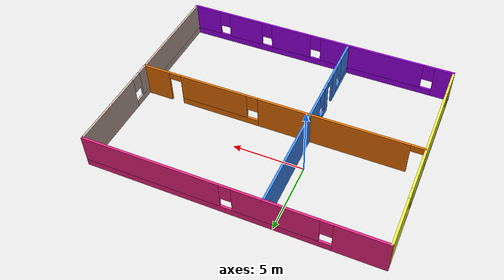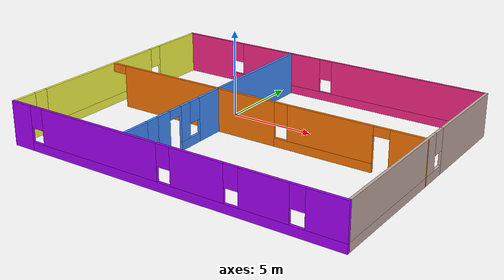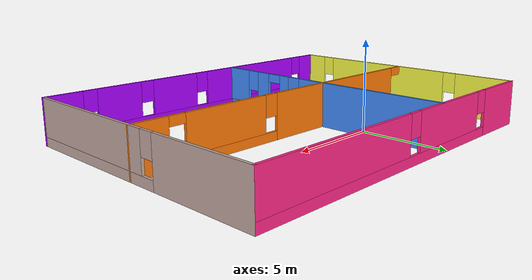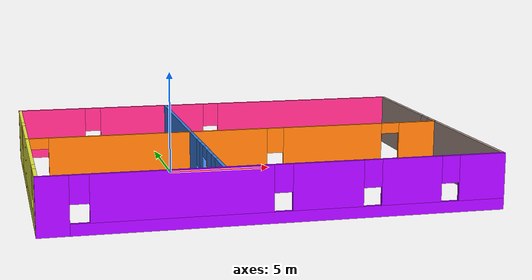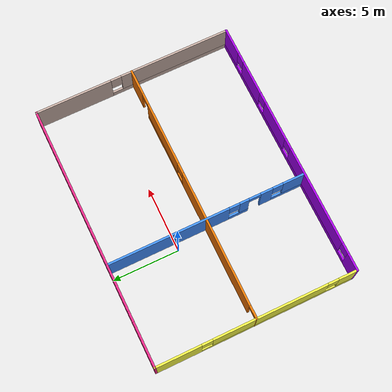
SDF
<?xml version='1.0'?>
<sdf version='1.6'>
  <model name='my_small_office'>
    <pose frame=''>2.925 -2.5 0 0 -0 0</pose>
    <link name='Wall_1'>
      <pose frame=''>0 -7.5 0 0 -0 0</pose>
      <visual name='Wall_1_Visual_0'>
        <pose frame=''>-9.32312 0 1.25 0 -0 0</pose>
        <geometry>
          <box>
            <size>1.35377 0.15 2.5</size>
          </box>
        </geometry>
        <material>
          <script>
            <uri>file://media/materials/scripts/gazebo.material</uri>
            <name>Gazebo/Grey</name>
          </script>
          <ambient>0.666667 0 1 1</ambient>
        </material>
        <meta>
          <layer>0</layer>
        </meta>
      </visual>
      <collision name='Wall_1_Collision_0'>
        <geometry>
          <box>
            <size>1.35377 0.15 2.5</size>
          </box>
        </geometry>
        <pose frame=''>-9.32312 0 1.25 0 -0 0</pose>
      </collision>
      <visual name='Wall_1_Visual_1'>
        <pose frame=''>0.676883 0 0.25 0 -0 0</pose>
        <geometry>
          <box>
            <size>18.6462 0.15 0.5</size>
          </box>
        </geometry>
        <material>
          <script>
            <uri>file://media/materials/scripts/gazebo.material</uri>
            <name>Gazebo/Grey</name>
          </script>
          <ambient>0.666667 0 1 1</ambient>
        </material>
        <meta>
          <layer>0</layer>
        </meta>
      </visual>
      <collision name='Wall_1_Collision_1'>
        <geometry>
          <box>
            <size>18.6462 0.15 0.5</size>
          </box>
        </geometry>
        <pose frame=''>0.676883 0 0.25 0 -0 0</pose>
      </collision>
      <visual name='Wall_1_Visual_2'>
        <pose frame=''>-4.05234 0 1.5 0 -0 0</pose>
        <geometry>
          <box>
            <size>7.58779 0.15 2</size>
          </box>
        </geometry>
        <material>
          <script>
            <uri>file://media/materials/scripts/gazebo.material</uri>
            <name>Gazebo/Grey</name>
          </script>
          <ambient>0.666667 0 1 1</ambient>
        </material>
        <meta>
          <layer>0</layer>
        </meta>
      </visual>
      <collision name='Wall_1_Collision_2'>
        <geometry>
          <box>
            <size>7.58779 0.15 2</size>
          </box>
        </geometry>
        <pose frame=''>-4.05234 0 1.5 0 -0 0</pose>
      </collision>
      <visual name='Wall_1_Visual_3'>
        <pose frame=''>2.08342 0 1.5 0 -0 0</pose>
        <geometry>
          <box>
            <size>3.08373 0.15 2</size>
          </box>
        </geometry>
        <material>
          <script>
            <uri>file://media/materials/scripts/gazebo.material</uri>
            <name>Gazebo/Grey</name>
          </script>
          <ambient>0.666667 0 1 1</ambient>
        </material>
        <meta>
          <layer>0</layer>
        </meta>
      </visual>
      <collision name='Wall_1_Collision_3'>
        <geometry>
          <box>
            <size>3.08373 0.15 2</size>
          </box>
        </geometry>
        <pose frame=''>2.08342 0 1.5 0 -0 0</pose>
      </collision>
      <visual name='Wall_1_Visual_4'>
        <pose frame=''>5.76488 0 1.5 0 -0 0</pose>
        <geometry>
          <box>
            <size>2.67918 0.15 2</size>
          </box>
        </geometry>
        <material>
          <script>
            <uri>file://media/materials/scripts/gazebo.material</uri>
            <name>Gazebo/Grey</name>
          </script>
          <ambient>0.666667 0 1 1</ambient>
        </material>
        <meta>
          <layer>0</layer>
        </meta>
      </visual>
      <collision name='Wall_1_Collision_4'>
        <geometry>
          <box>
            <size>2.67918 0.15 2</size>
          </box>
        </geometry>
        <pose frame=''>5.76488 0 1.5 0 -0 0</pose>
      </collision>
      <visual name='Wall_1_Visual_5'>
        <pose frame=''>8.95224 0 1.5 0 -0 0</pose>
        <geometry>
          <box>
            <size>2.09553 0.15 2</size>
          </box>
        </geometry>
        <material>
          <script>
            <uri>file://media/materials/scripts/gazebo.material</uri>
            <name>Gazebo/Grey</name>
          </script>
          <ambient>0.666667 0 1 1</ambient>
        </material>
        <meta>
          <layer>0</layer>
        </meta>
      </visual>
      <collision name='Wall_1_Collision_5'>
        <geometry>
          <box>
            <size>2.09553 0.15 2</size>
          </box>
        </geometry>
        <pose frame=''>8.95224 0 1.5 0 -0 0</pose>
      </collision>
      <visual name='Wall_1_Visual_6'>
        <pose frame=''>-8.24623 0 1.9 0 -0 0</pose>
        <geometry>
          <box>
            <size>0.8 0.15 1.2</size>
          </box>
        </geometry>
        <material>
          <script>
            <uri>file://media/materials/scripts/gazebo.material</uri>
            <name>Gazebo/Grey</name>
          </script>
          <ambient>0.666667 0 1 1</ambient>
        </material>
        <meta>
          <layer>0</layer>
        </meta>
      </visual>
      <collision name='Wall_1_Collision_6'>
        <geometry>
          <box>
            <size>0.8 0.15 1.2</size>
          </box>
        </geometry>
        <pose frame=''>-8.24623 0 1.9 0 -0 0</pose>
      </collision>
      <visual name='Wall_1_Visual_7'>
        <pose frame=''>0.141556 0 1.9 0 -0 0</pose>
        <geometry>
          <box>
            <size>0.8 0.15 1.2</size>
          </box>
        </geometry>
        <material>
          <script>
            <uri>file://media/materials/scripts/gazebo.material</uri>
            <name>Gazebo/Grey</name>
          </script>
          <ambient>0.666667 0 1 1</ambient>
        </material>
        <meta>
          <layer>0</layer>
        </meta>
      </visual>
      <collision name='Wall_1_Collision_7'>
        <geometry>
          <box>
            <size>0.8 0.15 1.2</size>
          </box>
        </geometry>
        <pose frame=''>0.141556 0 1.9 0 -0 0</pose>
      </collision>
      <visual name='Wall_1_Visual_8'>
        <pose frame=''>4.02529 0 1.9 0 -0 0</pose>
        <geometry>
          <box>
            <size>0.8 0.15 1.2</size>
          </box>
        </geometry>
        <material>
          <script>
            <uri>file://media/materials/scripts/gazebo.material</uri>
            <name>Gazebo/Grey</name>
          </script>
          <ambient>0.666667 0 1 1</ambient>
        </material>
        <meta>
          <layer>0</layer>
        </meta>
      </visual>
      <collision name='Wall_1_Collision_8'>
        <geometry>
          <box>
            <size>0.8 0.15 1.2</size>
          </box>
        </geometry>
        <pose frame=''>4.02529 0 1.9 0 -0 0</pose>
      </collision>
      <visual name='Wall_1_Visual_9'>
        <pose frame=''>7.50447 0 1.9 0 -0 0</pose>
        <geometry>
          <box>
            <size>0.8 0.15 1.2</size>
          </box>
        </geometry>
        <material>
          <script>
            <uri>file://media/materials/scripts/gazebo.material</uri>
            <name>Gazebo/Grey</name>
          </script>
          <ambient>0.666667 0 1 1</ambient>
        </material>
        <meta>
          <layer>0</layer>
        </meta>
      </visual>
      <collision name='Wall_1_Collision_9'>
        <geometry>
          <box>
            <size>0.8 0.15 1.2</size>
          </box>
        </geometry>
        <pose frame=''>7.50447 0 1.9 0 -0 0</pose>
      </collision>
    </link>
    <link name='Wall_10'>
      <pose frame=''>0 0.0775 0 0 -0 0.000252</pose>
      <visual name='Wall_10_Visual_0'>
        <pose frame=''>-9.92799 0 1.25 0 -0 0</pose>
        <geometry>
          <box>
            <size>0.144015 0.15 2.5</size>
          </box>
        </geometry>
        <material>
          <script>
            <uri>file://media/materials/scripts/gazebo.material</uri>
            <name>Gazebo/Grey</name>
          </script>
          <ambient>0.996078 0.47451 0.0196078 1</ambient>
        </material>
        <meta>
          <layer>0</layer>
        </meta>
      </visual>
      <collision name='Wall_10_Collision_0'>
        <geometry>
          <box>
            <size>0.144015 0.15 2.5</size>
          </box>
        </geometry>
        <pose frame=''>-9.92799 0 1.25 0 -0 0</pose>
      </collision>
      <visual name='Wall_10_Visual_1'>
        <pose frame=''>-3.79811 0 1.25 0 -0 0</pose>
        <geometry>
          <box>
            <size>10.3158 0.15 2.5</size>
          </box>
        </geometry>
        <material>
          <script>
            <uri>file://media/materials/scripts/gazebo.material</uri>
            <name>Gazebo/Grey</name>
          </script>
          <ambient>0.996078 0.47451 0.0196078 1</ambient>
        </material>
        <meta>
          <layer>0</layer>
        </meta>
      </visual>
      <collision name='Wall_10_Collision_1'>
        <geometry>
          <box>
            <size>10.3158 0.15 2.5</size>
          </box>
        </geometry>
        <pose frame=''>-3.79811 0 1.25 0 -0 0</pose>
      </collision>
      <visual name='Wall_10_Visual_2'>
        <pose frame=''>9.00419 0 1.25 0 -0 0</pose>
        <geometry>
          <box>
            <size>1.99163 0.15 2.5</size>
          </box>
        </geometry>
        <material>
          <script>
            <uri>file://media/materials/scripts/gazebo.material</uri>
            <name>Gazebo/Grey</name>
          </script>
          <ambient>0.996078 0.47451 0.0196078 1</ambient>
        </material>
        <meta>
          <layer>0</layer>
        </meta>
      </visual>
      <collision name='Wall_10_Collision_2'>
        <geometry>
          <box>
            <size>1.99163 0.15 2.5</size>
          </box>
        </geometry>
        <pose frame=''>9.00419 0 1.25 0 -0 0</pose>
      </collision>
      <visual name='Wall_10_Visual_3'>
        <pose frame=''>4.23407 0 0.25 0 -0 0</pose>
        <geometry>
          <box>
            <size>5.74861 0.15 0.5</size>
          </box>
        </geometry>
        <material>
          <script>
            <uri>file://media/materials/scripts/gazebo.material</uri>
            <name>Gazebo/Grey</name>
          </script>
          <ambient>0.996078 0.47451 0.0196078 1</ambient>
        </material>
        <meta>
          <layer>0</layer>
        </meta>
      </visual>
      <collision name='Wall_10_Collision_3'>
        <geometry>
          <box>
            <size>5.74861 0.15 0.5</size>
          </box>
        </geometry>
        <pose frame=''>4.23407 0 0.25 0 -0 0</pose>
      </collision>
      <visual name='Wall_10_Visual_4'>
        <pose frame=''>4.63407 0 1.5 0 -0 0</pose>
        <geometry>
          <box>
            <size>4.94861 0.15 2</size>
          </box>
        </geometry>
        <material>
          <script>
            <uri>file://media/materials/scripts/gazebo.material</uri>
            <name>Gazebo/Grey</name>
          </script>
          <ambient>0.996078 0.47451 0.0196078 1</ambient>
        </material>
        <meta>
          <layer>0</layer>
        </meta>
      </visual>
      <collision name='Wall_10_Collision_4'>
        <geometry>
          <box>
            <size>4.94861 0.15 2</size>
          </box>
        </geometry>
        <pose frame=''>4.63407 0 1.5 0 -0 0</pose>
      </collision>
      <visual name='Wall_10_Visual_5'>
        <pose frame=''>1.75977 0 1.9 0 -0 0</pose>
        <geometry>
          <box>
            <size>0.8 0.15 1.2</size>
          </box>
        </geometry>
        <material>
          <script>
            <uri>file://media/materials/scripts/gazebo.material</uri>
            <name>Gazebo/Grey</name>
          </script>
          <ambient>0.996078 0.47451 0.0196078 1</ambient>
        </material>
        <meta>
          <layer>0</layer>
        </meta>
      </visual>
      <collision name='Wall_10_Collision_5'>
        <geometry>
          <box>
            <size>0.8 0.15 1.2</size>
          </box>
        </geometry>
        <pose frame=''>1.75977 0 1.9 0 -0 0</pose>
      </collision>
      <visual name='Wall_10_Visual_6'>
        <pose frame=''>-9.40598 0 2.25 0 -0 0</pose>
        <geometry>
          <box>
            <size>0.9 0.15 0.5</size>
          </box>
        </geometry>
        <material>
          <script>
            <uri>file://media/materials/scripts/gazebo.material</uri>
            <name>Gazebo/Grey</name>
          </script>
          <ambient>0.996078 0.47451 0.0196078 1</ambient>
        </material>
        <meta>
          <layer>0</layer>
        </meta>
      </visual>
      <collision name='Wall_10_Collision_6'>
        <geometry>
          <box>
            <size>0.9 0.15 0.5</size>
          </box>
        </geometry>
        <pose frame=''>-9.40598 0 2.25 0 -0 0</pose>
      </collision>
      <visual name='Wall_10_Visual_7'>
        <pose frame=''>7.55837 0 2.25 0 -0 0</pose>
        <geometry>
          <box>
            <size>0.9 0.15 0.5</size>
          </box>
        </geometry>
        <material>
          <script>
            <uri>file://media/materials/scripts/gazebo.material</uri>
            <name>Gazebo/Grey</name>
          </script>
          <ambient>0.996078 0.47451 0.0196078 1</ambient>
        </material>
        <meta>
          <layer>0</layer>
        </meta>
      </visual>
      <collision name='Wall_10_Collision_7'>
        <geometry>
          <box>
            <size>0.9 0.15 0.5</size>
          </box>
        </geometry>
        <pose frame=''>7.55837 0 2.25 0 -0 0</pose>
      </collision>
    </link>
    <link name='Wall_12'>
      <pose frame=''>-2.325 0.075 0 0 0 -1.5708</pose>
      <visual name='Wall_12_Visual_0'>
        <pose frame=''>-2.8759 0 1.25 0 -0 0</pose>
        <geometry>
          <box>
            <size>9.24819 0.15 2.5</size>
          </box>
        </geometry>
        <material>
          <script>
            <uri>file://media/materials/scripts/gazebo.material</uri>
            <name>Gazebo/Grey</name>
          </script>
          <ambient>0.258824 0.556863 1 1</ambient>
        </material>
        <meta>
          <layer>0</layer>
        </meta>
      </visual>
      <collision name='Wall_12_Collision_0'>
        <geometry>
          <box>
            <size>9.24819 0.15 2.5</size>
          </box>
        </geometry>
        <pose frame=''>-2.8759 0 1.25 0 -0 0</pose>
      </collision>
      <visual name='Wall_12_Visual_1'>
        <pose frame=''>4.6275 0 1.25 0 -0 0</pose>
        <geometry>
          <box>
            <size>0.930046 0.15 2.5</size>
          </box>
        </geometry>
        <material>
          <script>
            <uri>file://media/materials/scripts/gazebo.material</uri>
            <name>Gazebo/Grey</name>
          </script>
          <ambient>0.258824 0.556863 1 1</ambient>
        </material>
        <meta>
          <layer>0</layer>
        </meta>
      </visual>
      <collision name='Wall_12_Collision_1'>
        <geometry>
          <box>
            <size>0.930046 0.15 2.5</size>
          </box>
        </geometry>
        <pose frame=''>4.6275 0 1.25 0 -0 0</pose>
      </collision>
      <visual name='Wall_12_Visual_2'>
        <pose frame=''>2.50534 0 0.25 0 -0 0</pose>
        <geometry>
          <box>
            <size>1.51428 0.15 0.5</size>
          </box>
        </geometry>
        <material>
          <script>
            <uri>file://media/materials/scripts/gazebo.material</uri>
            <name>Gazebo/Grey</name>
          </script>
          <ambient>0.258824 0.556863 1 1</ambient>
        </material>
        <meta>
          <layer>0</layer>
        </meta>
      </visual>
      <collision name='Wall_12_Collision_2'>
        <geometry>
          <box>
            <size>1.51428 0.15 0.5</size>
          </box>
        </geometry>
        <pose frame=''>2.50534 0 0.25 0 -0 0</pose>
      </collision>
      <visual name='Wall_12_Visual_3'>
        <pose frame=''>6.29626 0 0.25 0 -0 0</pose>
        <geometry>
          <box>
            <size>2.40748 0.15 0.5</size>
          </box>
        </geometry>
        <material>
          <script>
            <uri>file://media/materials/scripts/gazebo.material</uri>
            <name>Gazebo/Grey</name>
          </script>
          <ambient>0.258824 0.556863 1 1</ambient>
        </material>
        <meta>
          <layer>0</layer>
        </meta>
      </visual>
      <collision name='Wall_12_Collision_3'>
        <geometry>
          <box>
            <size>2.40748 0.15 0.5</size>
          </box>
        </geometry>
        <pose frame=''>6.29626 0 0.25 0 -0 0</pose>
      </collision>
      <visual name='Wall_12_Visual_4'>
        <pose frame=''>2.90534 0 1.5 0 -0 0</pose>
        <geometry>
          <box>
            <size>0.714282 0.15 2</size>
          </box>
        </geometry>
        <material>
          <script>
            <uri>file://media/materials/scripts/gazebo.material</uri>
            <name>Gazebo/Grey</name>
          </script>
          <ambient>0.258824 0.556863 1 1</ambient>
        </material>
        <meta>
          <layer>0</layer>
        </meta>
      </visual>
      <collision name='Wall_12_Collision_4'>
        <geometry>
          <box>
            <size>0.714282 0.15 2</size>
          </box>
        </geometry>
        <pose frame=''>2.90534 0 1.5 0 -0 0</pose>
      </collision>
      <visual name='Wall_12_Visual_5'>
        <pose frame=''>2.90534 0 1.5 0 -0 0</pose>
        <geometry>
          <box>
            <size>0.714282 0.15 2</size>
          </box>
        </geometry>
        <material>
          <script>
            <uri>file://media/materials/scripts/gazebo.material</uri>
            <name>Gazebo/Grey</name>
          </script>
          <ambient>0.258824 0.556863 1 1</ambient>
        </material>
        <meta>
          <layer>0</layer>
        </meta>
      </visual>
      <collision name='Wall_12_Collision_5'>
        <geometry>
          <box>
            <size>0.714282 0.15 2</size>
          </box>
        </geometry>
        <pose frame=''>2.90534 0 1.5 0 -0 0</pose>
      </collision>
      <visual name='Wall_12_Visual_6'>
        <pose frame=''>6.69626 0 1.5 0 -0 0</pose>
        <geometry>
          <box>
            <size>1.60748 0.15 2</size>
          </box>
        </geometry>
        <material>
          <script>
            <uri>file://media/materials/scripts/gazebo.material</uri>
            <name>Gazebo/Grey</name>
          </script>
          <ambient>0.258824 0.556863 1 1</ambient>
        </material>
        <meta>
          <layer>0</layer>
        </meta>
      </visual>
      <collision name='Wall_12_Collision_6'>
        <geometry>
          <box>
            <size>1.60748 0.15 2</size>
          </box>
        </geometry>
        <pose frame=''>6.69626 0 1.5 0 -0 0</pose>
      </collision>
      <visual name='Wall_12_Visual_7'>
        <pose frame=''>2.14819 0 1.9 0 -0 0</pose>
        <geometry>
          <box>
            <size>0.8 0.15 1.2</size>
          </box>
        </geometry>
        <material>
          <script>
            <uri>file://media/materials/scripts/gazebo.material</uri>
            <name>Gazebo/Grey</name>
          </script>
          <ambient>0.258824 0.556863 1 1</ambient>
        </material>
        <meta>
          <layer>0</layer>
        </meta>
      </visual>
      <collision name='Wall_12_Collision_7'>
        <geometry>
          <box>
            <size>0.8 0.15 1.2</size>
          </box>
        </geometry>
        <pose frame=''>2.14819 0 1.9 0 -0 0</pose>
      </collision>
      <visual name='Wall_12_Visual_8'>
        <pose frame=''>5.49252 0 1.9 0 -0 0</pose>
        <geometry>
          <box>
            <size>0.8 0.15 1.2</size>
          </box>
        </geometry>
        <material>
          <script>
            <uri>file://media/materials/scripts/gazebo.material</uri>
            <name>Gazebo/Grey</name>
          </script>
          <ambient>0.258824 0.556863 1 1</ambient>
        </material>
        <meta>
          <layer>0</layer>
        </meta>
      </visual>
      <collision name='Wall_12_Collision_8'>
        <geometry>
          <box>
            <size>0.8 0.15 1.2</size>
          </box>
        </geometry>
        <pose frame=''>5.49252 0 1.9 0 -0 0</pose>
      </collision>
      <visual name='Wall_12_Visual_9'>
        <pose frame=''>3.71248 0 2.25 0 -0 0</pose>
        <geometry>
          <box>
            <size>0.9 0.15 0.5</size>
          </box>
        </geometry>
        <material>
          <script>
            <uri>file://media/materials/scripts/gazebo.material</uri>
            <name>Gazebo/Grey</name>
          </script>
          <ambient>0.258824 0.556863 1 1</ambient>
        </material>
        <meta>
          <layer>0</layer>
        </meta>
      </visual>
      <collision name='Wall_12_Collision_9'>
        <geometry>
          <box>
            <size>0.9 0.15 0.5</size>
          </box>
        </geometry>
        <pose frame=''>3.71248 0 2.25 0 -0 0</pose>
      </collision>
      <visual name='Wall_12_Visual_10'>
        <pose frame=''>3.71248 0 2.25 0 -0 0</pose>
        <geometry>
          <box>
            <size>0.9 0.15 0.5</size>
          </box>
        </geometry>
        <material>
          <script>
            <uri>file://media/materials/scripts/gazebo.material</uri>
            <name>Gazebo/Grey</name>
          </script>
          <ambient>0.258824 0.556863 1 1</ambient>
        </material>
        <meta>
          <layer>0</layer>
        </meta>
      </visual>
      <collision name='Wall_12_Collision_10'>
        <geometry>
          <box>
            <size>0.9 0.15 0.5</size>
          </box>
        </geometry>
        <pose frame=''>3.71248 0 2.25 0 -0 0</pose>
      </collision>
    </link>
    <link name='Wall_3'>
      <pose frame=''>0 7.5 0 0 -0 0</pose>
      <visual name='Wall_3_Visual_0'>
        <pose frame=''>-8.29911 0 1.25 0 -0 0</pose>
        <geometry>
          <box>
            <size>3.40179 0.15 2.5</size>
          </box>
        </geometry>
        <material>
          <script>
            <uri>file://media/materials/scripts/gazebo.material</uri>
            <name>Gazebo/Grey</name>
          </script>
          <ambient>1 0.152941 0.533333 1</ambient>
        </material>
        <meta>
          <layer>0</layer>
        </meta>
      </visual>
      <collision name='Wall_3_Collision_0'>
        <geometry>
          <box>
            <size>3.40179 0.15 2.5</size>
          </box>
        </geometry>
        <pose frame=''>-8.29911 0 1.25 0 -0 0</pose>
      </collision>
      <visual name='Wall_3_Visual_1'>
        <pose frame=''>1.7009 0 0.25 0 -0 0</pose>
        <geometry>
          <box>
            <size>16.5982 0.15 0.5</size>
          </box>
        </geometry>
        <material>
          <script>
            <uri>file://media/materials/scripts/gazebo.material</uri>
            <name>Gazebo/Grey</name>
          </script>
          <ambient>1 0.152941 0.533333 1</ambient>
        </material>
        <meta>
          <layer>0</layer>
        </meta>
      </visual>
      <collision name='Wall_3_Collision_1'>
        <geometry>
          <box>
            <size>16.5982 0.15 0.5</size>
          </box>
        </geometry>
        <pose frame=''>1.7009 0 0.25 0 -0 0</pose>
      </collision>
      <visual name='Wall_3_Visual_2'>
        <pose frame=''>-3.0473 0 1.5 0 -0 0</pose>
        <geometry>
          <box>
            <size>5.50182 0.15 2</size>
          </box>
        </geometry>
        <material>
          <script>
            <uri>file://media/materials/scripts/gazebo.material</uri>
            <name>Gazebo/Grey</name>
          </script>
          <ambient>1 0.152941 0.533333 1</ambient>
        </material>
        <meta>
          <layer>0</layer>
        </meta>
      </visual>
      <collision name='Wall_3_Collision_2'>
        <geometry>
          <box>
            <size>5.50182 0.15 2</size>
          </box>
        </geometry>
        <pose frame=''>-3.0473 0 1.5 0 -0 0</pose>
      </collision>
      <visual name='Wall_3_Visual_3'>
        <pose frame=''>5.25181 0 1.5 0 -0 0</pose>
        <geometry>
          <box>
            <size>9.49639 0.15 2</size>
          </box>
        </geometry>
        <material>
          <script>
            <uri>file://media/materials/scripts/gazebo.material</uri>
            <name>Gazebo/Grey</name>
          </script>
          <ambient>1 0.152941 0.533333 1</ambient>
        </material>
        <meta>
          <layer>0</layer>
        </meta>
      </visual>
      <collision name='Wall_3_Collision_3'>
        <geometry>
          <box>
            <size>9.49639 0.15 2</size>
          </box>
        </geometry>
        <pose frame=''>5.25181 0 1.5 0 -0 0</pose>
      </collision>
      <visual name='Wall_3_Visual_4'>
        <pose frame=''>-6.19821 0 1.9 0 -0 0</pose>
        <geometry>
          <box>
            <size>0.8 0.15 1.2</size>
          </box>
        </geometry>
        <material>
          <script>
            <uri>file://media/materials/scripts/gazebo.material</uri>
            <name>Gazebo/Grey</name>
          </script>
          <ambient>1 0.152941 0.533333 1</ambient>
        </material>
        <meta>
          <layer>0</layer>
        </meta>
      </visual>
      <collision name='Wall_3_Collision_4'>
        <geometry>
          <box>
            <size>0.8 0.15 1.2</size>
          </box>
        </geometry>
        <pose frame=''>-6.19821 0 1.9 0 -0 0</pose>
      </collision>
      <visual name='Wall_3_Visual_5'>
        <pose frame=''>0.103612 0 1.9 0 -0 0</pose>
        <geometry>
          <box>
            <size>0.8 0.15 1.2</size>
          </box>
        </geometry>
        <material>
          <script>
            <uri>file://media/materials/scripts/gazebo.material</uri>
            <name>Gazebo/Grey</name>
          </script>
          <ambient>1 0.152941 0.533333 1</ambient>
        </material>
        <meta>
          <layer>0</layer>
        </meta>
      </visual>
      <collision name='Wall_3_Collision_5'>
        <geometry>
          <box>
            <size>0.8 0.15 1.2</size>
          </box>
        </geometry>
        <pose frame=''>0.103612 0 1.9 0 -0 0</pose>
      </collision>
    </link>
    <link name='Wall_6'>
      <pose frame=''>-9.925 0.075 0 0 0 -1.5708</pose>
      <visual name='Wall_6_Visual_0'>
        <pose frame=''>-5.76173 0 1.25 0 -0 0</pose>
        <geometry>
          <box>
            <size>3.47653 0.15 2.5</size>
          </box>
        </geometry>
        <material>
          <script>
            <uri>file://media/materials/scripts/gazebo.material</uri>
            <name>Gazebo/Grey</name>
          </script>
          <ambient>0.988235 1 0.27451 1</ambient>
        </material>
        <meta>
          <layer>0</layer>
        </meta>
      </visual>
      <collision name='Wall_6_Collision_0'>
        <geometry>
          <box>
            <size>3.47653 0.15 2.5</size>
          </box>
        </geometry>
        <pose frame=''>-5.76173 0 1.25 0 -0 0</pose>
      </collision>
      <visual name='Wall_6_Visual_1'>
        <pose frame=''>1.73827 0 0.25 0 -0 0</pose>
        <geometry>
          <box>
            <size>11.5235 0.15 0.5</size>
          </box>
        </geometry>
        <material>
          <script>
            <uri>file://media/materials/scripts/gazebo.material</uri>
            <name>Gazebo/Grey</name>
          </script>
          <ambient>0.988235 1 0.27451 1</ambient>
        </material>
        <meta>
          <layer>0</layer>
        </meta>
      </visual>
      <collision name='Wall_6_Collision_1'>
        <geometry>
          <box>
            <size>11.5235 0.15 0.5</size>
          </box>
        </geometry>
        <pose frame=''>1.73827 0 0.25 0 -0 0</pose>
      </collision>
      <visual name='Wall_6_Visual_2'>
        <pose frame=''>1.06938 0 1.5 0 -0 0</pose>
        <geometry>
          <box>
            <size>8.58569 0.15 2</size>
          </box>
        </geometry>
        <material>
          <script>
            <uri>file://media/materials/scripts/gazebo.material</uri>
            <name>Gazebo/Grey</name>
          </script>
          <ambient>0.988235 1 0.27451 1</ambient>
        </material>
        <meta>
          <layer>0</layer>
        </meta>
      </visual>
      <collision name='Wall_6_Collision_2'>
        <geometry>
          <box>
            <size>8.58569 0.15 2</size>
          </box>
        </geometry>
        <pose frame=''>1.06938 0 1.5 0 -0 0</pose>
      </collision>
      <visual name='Wall_6_Visual_3'>
        <pose frame=''>6.83111 0 1.5 0 -0 0</pose>
        <geometry>
          <box>
            <size>1.33777 0.15 2</size>
          </box>
        </geometry>
        <material>
          <script>
            <uri>file://media/materials/scripts/gazebo.material</uri>
            <name>Gazebo/Grey</name>
          </script>
          <ambient>0.988235 1 0.27451 1</ambient>
        </material>
        <meta>
          <layer>0</layer>
        </meta>
      </visual>
      <collision name='Wall_6_Collision_3'>
        <geometry>
          <box>
            <size>1.33777 0.15 2</size>
          </box>
        </geometry>
        <pose frame=''>6.83111 0 1.5 0 -0 0</pose>
      </collision>
      <visual name='Wall_6_Visual_4'>
        <pose frame=''>-3.62347 0 1.9 0 -0 0</pose>
        <geometry>
          <box>
            <size>0.8 0.15 1.2</size>
          </box>
        </geometry>
        <material>
          <script>
            <uri>file://media/materials/scripts/gazebo.material</uri>
            <name>Gazebo/Grey</name>
          </script>
          <ambient>0.988235 1 0.27451 1</ambient>
        </material>
        <meta>
          <layer>0</layer>
        </meta>
      </visual>
      <collision name='Wall_6_Collision_4'>
        <geometry>
          <box>
            <size>0.8 0.15 1.2</size>
          </box>
        </geometry>
        <pose frame=''>-3.62347 0 1.9 0 -0 0</pose>
      </collision>
      <visual name='Wall_6_Visual_5'>
        <pose frame=''>5.76222 0 1.9 0 -0 0</pose>
        <geometry>
          <box>
            <size>0.8 0.15 1.2</size>
          </box>
        </geometry>
        <material>
          <script>
            <uri>file://media/materials/scripts/gazebo.material</uri>
            <name>Gazebo/Grey</name>
          </script>
          <ambient>0.988235 1 0.27451 1</ambient>
        </material>
        <meta>
          <layer>0</layer>
        </meta>
      </visual>
      <collision name='Wall_6_Collision_5'>
        <geometry>
          <box>
            <size>0.8 0.15 1.2</size>
          </box>
        </geometry>
        <pose frame=''>5.76222 0 1.9 0 -0 0</pose>
      </collision>
    </link>
    <link name='Wall_8'>
      <pose frame=''>9.925 0.075 0 0 0 -1.5708</pose>
      <visual name='Wall_8_Visual_0'>
        <pose frame=''>-4.58063 0 1.25 0 -0 0</pose>
        <geometry>
          <box>
            <size>5.83873 0.15 2.5</size>
          </box>
        </geometry>
        <material>
          <script>
            <uri>file://media/materials/scripts/gazebo.material</uri>
            <name>Gazebo/Grey</name>
          </script>
          <ambient>0.760784 0.662745 0.627451 1</ambient>
        </material>
        <meta>
          <layer>0</layer>
        </meta>
      </visual>
      <collision name='Wall_8_Collision_0'>
        <geometry>
          <box>
            <size>5.83873 0.15 2.5</size>
          </box>
        </geometry>
        <pose frame=''>-4.58063 0 1.25 0 -0 0</pose>
      </collision>
      <visual name='Wall_8_Visual_1'>
        <pose frame=''>2.91937 0 0.25 0 -0 0</pose>
        <geometry>
          <box>
            <size>9.16127 0.15 0.5</size>
          </box>
        </geometry>
        <material>
          <script>
            <uri>file://media/materials/scripts/gazebo.material</uri>
            <name>Gazebo/Grey</name>
          </script>
          <ambient>0.760784 0.662745 0.627451 1</ambient>
        </material>
        <meta>
          <layer>0</layer>
        </meta>
      </visual>
      <collision name='Wall_8_Collision_1'>
        <geometry>
          <box>
            <size>9.16127 0.15 0.5</size>
          </box>
        </geometry>
        <pose frame=''>2.91937 0 0.25 0 -0 0</pose>
      </collision>
      <visual name='Wall_8_Visual_2'>
        <pose frame=''>3.31937 0 1.5 0 -0 0</pose>
        <geometry>
          <box>
            <size>8.36127 0.15 2</size>
          </box>
        </geometry>
        <material>
          <script>
            <uri>file://media/materials/scripts/gazebo.material</uri>
            <name>Gazebo/Grey</name>
          </script>
          <ambient>0.760784 0.662745 0.627451 1</ambient>
        </material>
        <meta>
          <layer>0</layer>
        </meta>
      </visual>
      <collision name='Wall_8_Collision_2'>
        <geometry>
          <box>
            <size>8.36127 0.15 2</size>
          </box>
        </geometry>
        <pose frame=''>3.31937 0 1.5 0 -0 0</pose>
      </collision>
      <visual name='Wall_8_Visual_3'>
        <pose frame=''>-1.26127 0 1.9 0 -0 0</pose>
        <geometry>
          <box>
            <size>0.8 0.15 1.2</size>
          </box>
        </geometry>
        <material>
          <script>
            <uri>file://media/materials/scripts/gazebo.material</uri>
            <name>Gazebo/Grey</name>
          </script>
          <ambient>0.760784 0.662745 0.627451 1</ambient>
        </material>
        <meta>
          <layer>0</layer>
        </meta>
      </visual>
      <collision name='Wall_8_Collision_3'>
        <geometry>
          <box>
            <size>0.8 0.15 1.2</size>
          </box>
        </geometry>
        <pose frame=''>-1.26127 0 1.9 0 -0 0</pose>
      </collision>
    </link>
    <static>1</static>
  </model>
</sdf>
